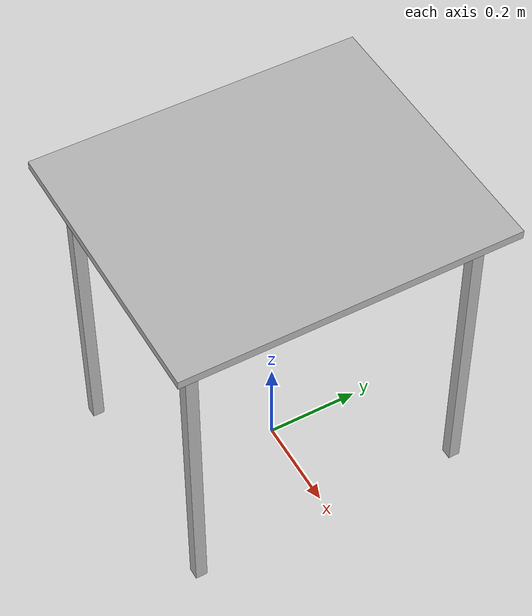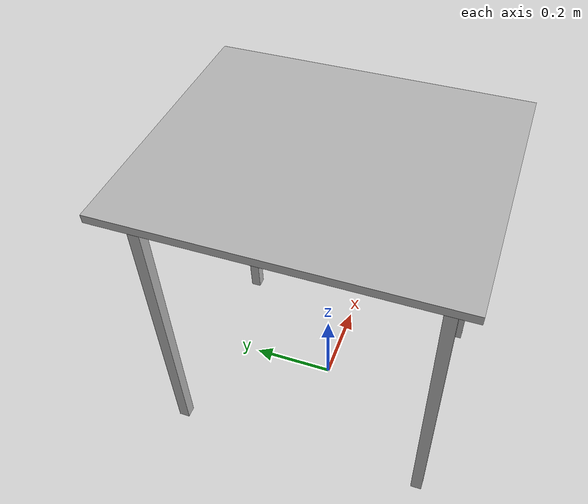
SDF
<?xml version="1.0"?>
<sdf version="1.6">
  <model name="rwc2018/desk">
    <link name="1_link">
      <collision name="1_col">
        <geometry>
          <box>
            <size>0.6 0.705 0.018</size>
          </box>
        </geometry>
      </collision>
      <visual name="1_vis">
        <geometry>
          <box>
            <size>0.6 0.705 0.018</size>
          </box>
        </geometry>
      </visual>
      <pose>0 0 0.711 0 0 0</pose>
    </link>
    <link name="2_link">
      <collision name="2_col">
        <geometry>
          <box>
            <size>0.025 0.025 0.702</size>
          </box>
        </geometry>
      </collision>
      <visual name="2_vis">
        <geometry>
          <box>
            <size>0.025 0.025 0.702</size>
          </box>
        </geometry>
      </visual>
      <pose>-0.2325 -0.3 0.351 0 0 0</pose>
    </link>
    <link name="3_link">
      <collision name="3_col">
        <geometry>
          <box>
            <size>0.025 0.025 0.702</size>
          </box>
        </geometry>
      </collision>
      <visual name="3_vis">
        <geometry>
          <box>
            <size>0.025 0.025 0.702</size>
          </box>
        </geometry>
      </visual>
      <pose>0.2325 -0.3 0.351 0 0 0</pose>
    </link>
    <link name="4_link">
      <collision name="4_col">
        <geometry>
          <box>
            <size>0.025 0.025 0.702</size>
          </box>
        </geometry>
      </collision>
      <visual name="4_vis">
        <geometry>
          <box>
            <size>0.025 0.025 0.702</size>
          </box>
        </geometry>
      </visual>
      <pose>-0.2325 0.3 0.351 0 0 0</pose>
    </link>
    <link name="5_link">
      <collision name="5_col">
        <geometry>
          <box>
            <size>0.025 0.025 0.702</size>
          </box>
        </geometry>
      </collision>
      <visual name="5_vis">
        <geometry>
          <box>
            <size>0.025 0.025 0.702</size>
          </box>
        </geometry>
      </visual>
      <pose>0.2325 0.3 0.351 0 0 0</pose>
    </link>
    <link name="on_top_of">
      <virtual_volume name="on_top_of_vv">
        <geometry>
          <box>
            <size>0.57 0.68 0.25</size>
          </box>
        </geometry>
        <pose>-0.005 0.0 0.865 0 0 0</pose>
      </virtual_volume>
    </link>
    <link name="in_front_of">
      <virtual_volume name="in_front_of_vv">
        <geometry>
          <box>
            <size>0.3 0.56 0.01</size>
          </box>
        </geometry>
        <pose>0.8 0.0 0.005 0 0 0</pose>
      </virtual_volume>
    </link>
    <static>true</static>
  </model>
</sdf>
